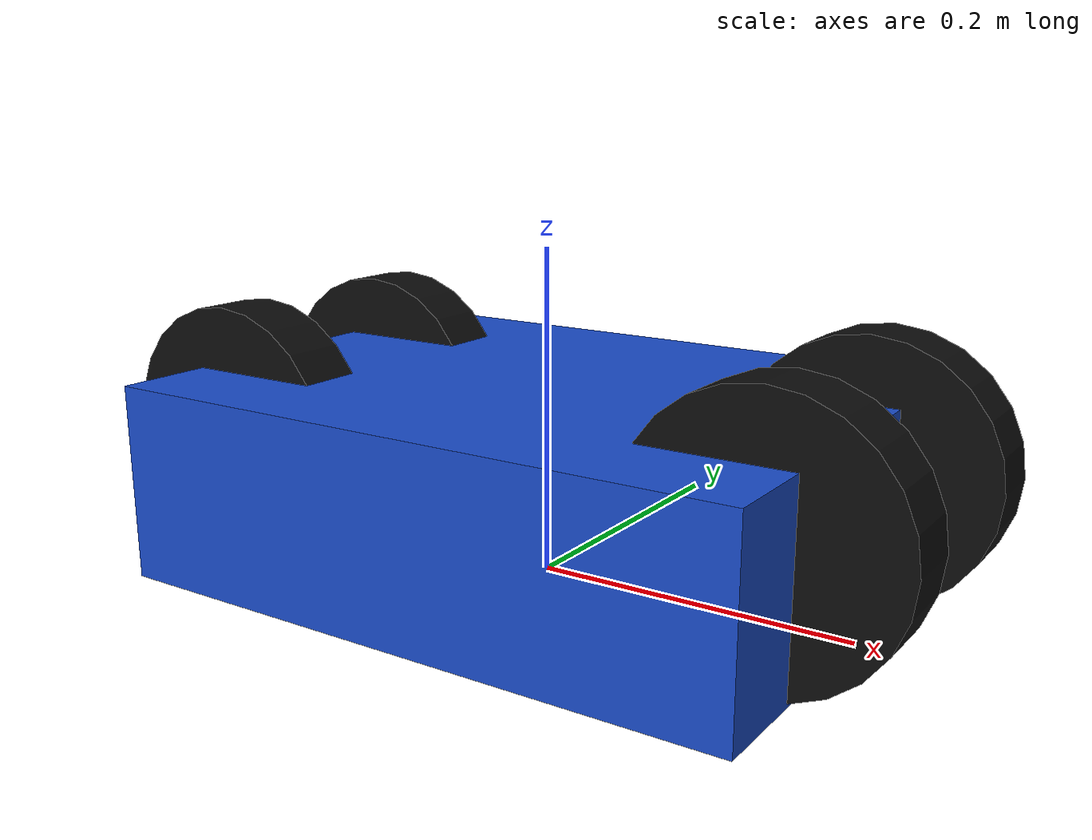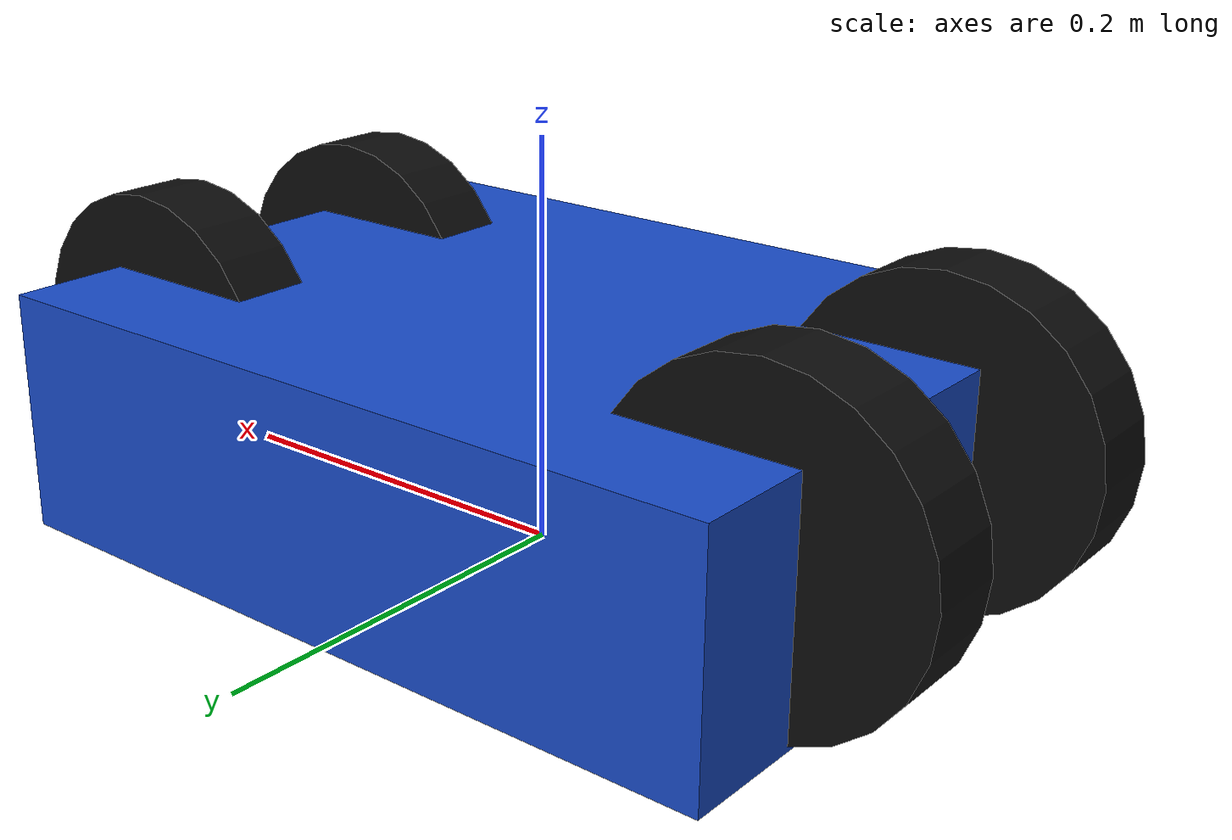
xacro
<?xml version="1.0"?>
<robot xmlns:xacro="http://www.ros.org/wiki/xacro" name="four_wheel_robot">
  <xacro:property name="wheel_radius" value="0.08"/>
  <xacro:property name="wheel_width" value="0.04"/>
  <xacro:property name="base_length" value="0.4"/>
  <xacro:property name="base_width" value="0.3"/>
  <xacro:property name="base_height" value="0.12"/>
  <xacro:property name="wheel_offset_x" value="${base_length / 2.0 - wheel_width / 2.0}"/>
  <xacro:property name="wheel_offset_y" value="${base_width / 2.0 - wheel_radius}"/>

  <link name="base_link">
    <inertial>
      <mass value="8.0"/>
      <origin xyz="0 0 ${base_height / 2.0}" rpy="0 0 0"/>
      <inertia ixx="0.12" ixy="0.0" ixz="0.0" iyy="0.15" iyz="0.0" izz="0.20"/>
    </inertial>
    <visual>
      <origin xyz="0 0 ${base_height / 2.0}" rpy="0 0 0"/>
      <geometry>
        <box size="${base_length} ${base_width} ${base_height}"/>
      </geometry>
      <material name="blue">
        <color rgba="0.1 0.3 0.8 1.0"/>
      </material>
    </visual>
    <collision>
      <origin xyz="0 0 ${base_height / 2.0}" rpy="0 0 0"/>
      <geometry>
        <box size="${base_length} ${base_width} ${base_height}"/>
      </geometry>
    </collision>
  </link>

  <xacro:macro name="wheel" params="prefix x y">
    <link name="${prefix}_wheel_link">
      <inertial>
        <mass value="1.0"/>
        <origin xyz="0 0 0" rpy="0 0 0"/>
        <inertia ixx="0.002" ixy="0" ixz="0" iyy="0.004" iyz="0" izz="0.002"/>
      </inertial>
      <visual>
        <origin xyz="0 0 0" rpy="${pi/2} 0 0"/>
        <geometry>
          <cylinder radius="${wheel_radius}" length="${wheel_width}"/>
        </geometry>
        <material name="black">
          <color rgba="0.05 0.05 0.05 1.0"/>
        </material>
      </visual>
      <collision>
        <origin xyz="0 0 0" rpy="${pi/2} 0 0"/>
        <geometry>
          <cylinder radius="${wheel_radius}" length="${wheel_width}"/>
        </geometry>
      </collision>
    </link>

    <joint name="${prefix}_wheel_joint" type="continuous">
      <origin xyz="${x} ${y} ${wheel_radius}" rpy="0 0 0"/>
      <parent link="base_link"/>
      <child link="${prefix}_wheel_link"/>
      <axis xyz="0 1 0"/>
      <limit effort="10.0" velocity="30.0"/>
      <dynamics damping="0.1" friction="0.0"/>
    </joint>

    <gazebo reference="${prefix}_wheel_link">
      <mu1>1.0</mu1>
      <mu2>1.0</mu2>
      <kp>100000.0</kp>
      <kd>10.0</kd>
      <fdir1>1 0 0</fdir1>
    </gazebo>
  </xacro:macro>

  <xacro:wheel prefix="front_left" x="${wheel_offset_x}" y="${wheel_offset_y}"/>
  <xacro:wheel prefix="front_right" x="${wheel_offset_x}" y="${-wheel_offset_y}"/>
  <xacro:wheel prefix="rear_left" x="${-wheel_offset_x}" y="${wheel_offset_y}"/>
  <xacro:wheel prefix="rear_right" x="${-wheel_offset_x}" y="${-wheel_offset_y}"/>

  <transmission name="front_left_wheel_transmission">
    <type>transmission_interface/SimpleTransmission</type>
    <joint name="front_left_wheel_joint">
      <hardwareInterface>hardware_interface/VelocityJointInterface</hardwareInterface>
    </joint>
    <actuator name="front_left_wheel_motor">
      <mechanicalReduction>1</mechanicalReduction>
      <hardwareInterface>hardware_interface/VelocityJointInterface</hardwareInterface>
    </actuator>
  </transmission>
  <transmission name="front_right_wheel_transmission">
    <type>transmission_interface/SimpleTransmission</type>
    <joint name="front_right_wheel_joint">
      <hardwareInterface>hardware_interface/VelocityJointInterface</hardwareInterface>
    </joint>
    <actuator name="front_right_wheel_motor">
      <mechanicalReduction>1</mechanicalReduction>
      <hardwareInterface>hardware_interface/VelocityJointInterface</hardwareInterface>
    </actuator>
  </transmission>
  <transmission name="rear_left_wheel_transmission">
    <type>transmission_interface/SimpleTransmission</type>
    <joint name="rear_left_wheel_joint">
      <hardwareInterface>hardware_interface/VelocityJointInterface</hardwareInterface>
    </joint>
    <actuator name="rear_left_wheel_motor">
      <mechanicalReduction>1</mechanicalReduction>
      <hardwareInterface>hardware_interface/VelocityJointInterface</hardwareInterface>
    </actuator>
  </transmission>
  <transmission name="rear_right_wheel_transmission">
    <type>transmission_interface/SimpleTransmission</type>
    <joint name="rear_right_wheel_joint">
      <hardwareInterface>hardware_interface/VelocityJointInterface</hardwareInterface>
    </joint>
    <actuator name="rear_right_wheel_motor">
      <mechanicalReduction>1</mechanicalReduction>
      <hardwareInterface>hardware_interface/VelocityJointInterface</hardwareInterface>
    </actuator>
  </transmission>
  <gazebo>
    <plugin name="ros2_control" filename="libignition_ros2_control-system.so">
      <parameters>$(find four_wheel_robot)/config/ros2_control.yaml</parameters>
    </plugin>
  </gazebo>

  <ros2_control name="four_wheel_robot_system" type="system">
    <hardware>
      <plugin>gazebo_ros2_control/GazeboSystem</plugin>
    </hardware>
    <joint name="front_left_wheel_joint">
      <command_interface name="velocity"/>
      <state_interface name="position"/>
      <state_interface name="velocity"/>
    </joint>
    <joint name="front_right_wheel_joint">
      <command_interface name="velocity"/>
      <state_interface name="position"/>
      <state_interface name="velocity"/>
    </joint>
    <joint name="rear_left_wheel_joint">
      <command_interface name="velocity"/>
      <state_interface name="position"/>
      <state_interface name="velocity"/>
    </joint>
    <joint name="rear_right_wheel_joint">
      <command_interface name="velocity"/>
      <state_interface name="position"/>
      <state_interface name="velocity"/>
    </joint>
  </ros2_control>
</robot>
